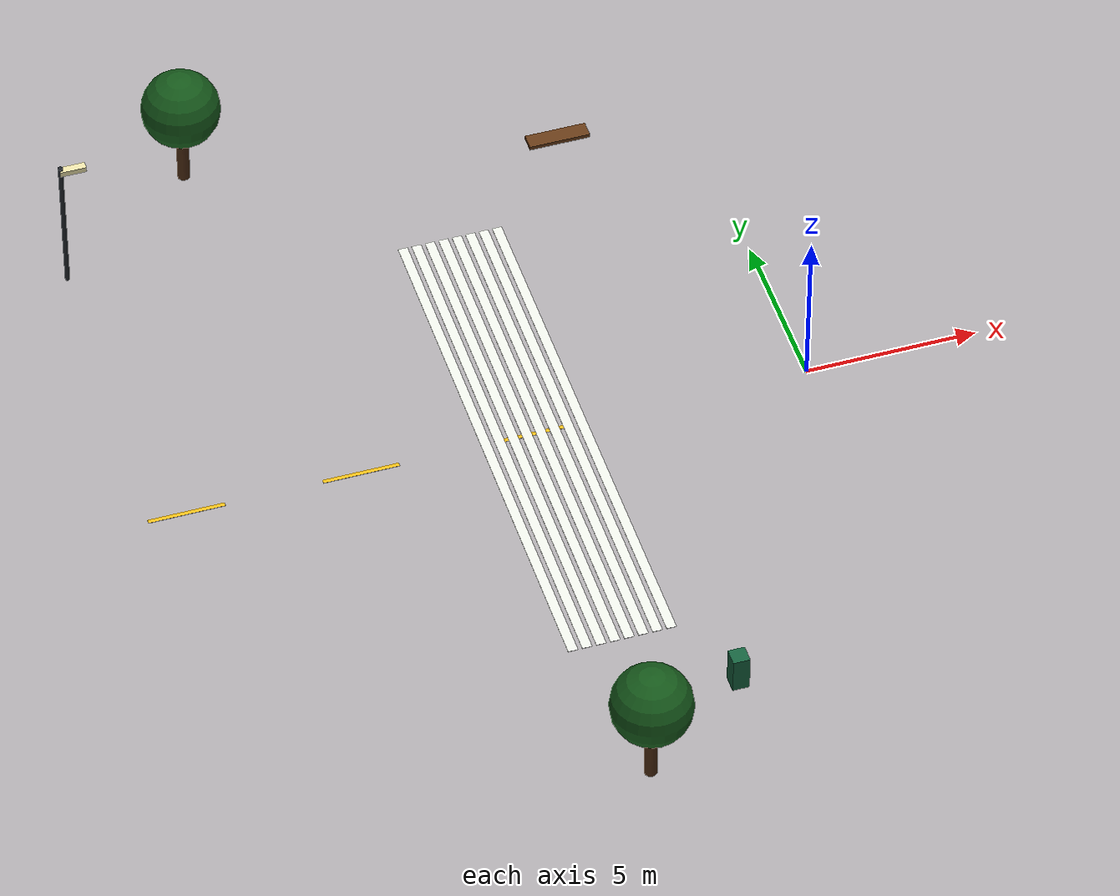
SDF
<sdf version="1.9">
 <world name="sanitation_campus_large">
  <model name="center_dash_16">
   <static>true</static>
   <pose>-18.0 0 0.012 0 0 0</pose>
   <link name="link">
    <visual name="visual">
     <geometry><box><size>2.2 0.12 0.012</size></box></geometry>
     <material>
      <ambient>0.95 0.74 0.10 1</ambient>
      <diffuse>0.95 0.74 0.10 1</diffuse>
      <specular>0.04 0.04 0.04 1</specular>
     </material>
    </visual>
   </link>
  </model>
  <model name="center_dash_17">
   <static>true</static>
   <pose>-13.0 0 0.012 0 0 0</pose>
   <link name="link">
    <visual name="visual">
     <geometry><box><size>2.2 0.12 0.012</size></box></geometry>
     <material>
      <ambient>0.95 0.74 0.10 1</ambient>
      <diffuse>0.95 0.74 0.10 1</diffuse>
      <specular>0.04 0.04 0.04 1</specular>
     </material>
    </visual>
   </link>
  </model>
  <model name="center_dash_18">
   <static>true</static>
   <pose>-8.0 0 0.012 0 0 0</pose>
   <link name="link">
    <visual name="visual">
     <geometry><box><size>2.2 0.12 0.012</size></box></geometry>
     <material>
      <ambient>0.95 0.74 0.10 1</ambient>
      <diffuse>0.95 0.74 0.10 1</diffuse>
      <specular>0.04 0.04 0.04 1</specular>
     </material>
    </visual>
   </link>
  </model>
  <model name="crosswalk_00">
   <static>true</static>
   <pose>-9.4 0 0.014 0 0 0</pose>
   <link name="link">
    <visual name="visual">
     <geometry><box><size>0.28 16.0 0.014</size></box></geometry>
     <material>
      <ambient>0.92 0.93 0.90 1</ambient>
      <diffuse>0.92 0.93 0.90 1</diffuse>
      <specular>0.04 0.04 0.04 1</specular>
     </material>
    </visual>
   </link>
  </model>
  <model name="crosswalk_01">
   <static>true</static>
   <pose>-9.0 0 0.014 0 0 0</pose>
   <link name="link">
    <visual name="visual">
     <geometry><box><size>0.28 16.0 0.014</size></box></geometry>
     <material>
      <ambient>0.92 0.93 0.90 1</ambient>
      <diffuse>0.92 0.93 0.90 1</diffuse>
      <specular>0.04 0.04 0.04 1</specular>
     </material>
    </visual>
   </link>
  </model>
  <model name="crosswalk_02">
   <static>true</static>
   <pose>-8.6 0 0.014 0 0 0</pose>
   <link name="link">
    <visual name="visual">
     <geometry><box><size>0.28 16.0 0.014</size></box></geometry>
     <material>
      <ambient>0.92 0.93 0.90 1</ambient>
      <diffuse>0.92 0.93 0.90 1</diffuse>
      <specular>0.04 0.04 0.04 1</specular>
     </material>
    </visual>
   </link>
  </model>
  <model name="crosswalk_03">
   <static>true</static>
   <pose>-8.2 0 0.014 0 0 0</pose>
   <link name="link">
    <visual name="visual">
     <geometry><box><size>0.28 16.0 0.014</size></box></geometry>
     <material>
      <ambient>0.92 0.93 0.90 1</ambient>
      <diffuse>0.92 0.93 0.90 1</diffuse>
      <specular>0.04 0.04 0.04 1</specular>
     </material>
    </visual>
   </link>
  </model>
  <model name="crosswalk_04">
   <static>true</static>
   <pose>-7.8 0 0.014 0 0 0</pose>
   <link name="link">
    <visual name="visual">
     <geometry><box><size>0.28 16.0 0.014</size></box></geometry>
     <material>
      <ambient>0.92 0.93 0.90 1</ambient>
      <diffuse>0.92 0.93 0.90 1</diffuse>
      <specular>0.04 0.04 0.04 1</specular>
     </material>
    </visual>
   </link>
  </model>
  <model name="crosswalk_05">
   <static>true</static>
   <pose>-7.4 0 0.014 0 0 0</pose>
   <link name="link">
    <visual name="visual">
     <geometry><box><size>0.28 16.0 0.014</size></box></geometry>
     <material>
      <ambient>0.92 0.93 0.90 1</ambient>
      <diffuse>0.92 0.93 0.90 1</diffuse>
      <specular>0.04 0.04 0.04 1</specular>
     </material>
    </visual>
   </link>
  </model>
  <model name="crosswalk_06">
   <static>true</static>
   <pose>-7.0 0 0.014 0 0 0</pose>
   <link name="link">
    <visual name="visual">
     <geometry><box><size>0.28 16.0 0.014</size></box></geometry>
     <material>
      <ambient>0.92 0.93 0.90 1</ambient>
      <diffuse>0.92 0.93 0.90 1</diffuse>
      <specular>0.04 0.04 0.04 1</specular>
     </material>
    </visual>
   </link>
  </model>
  <model name="crosswalk_07">
   <static>true</static>
   <pose>-6.6 0 0.014 0 0 0</pose>
   <link name="link">
    <visual name="visual">
     <geometry><box><size>0.28 16.0 0.014</size></box></geometry>
     <material>
      <ambient>0.92 0.93 0.90 1</ambient>
      <diffuse>0.92 0.93 0.90 1</diffuse>
      <specular>0.04 0.04 0.04 1</specular>
     </material>
    </visual>
   </link>
  </model>
  <model name="tree_14">
   <static>true</static>
   <pose>-14.545454545454547 12.7 0 0 0 0</pose>
   <link name="link">
    <collision name="trunk_collision">
     <geometry><cylinder><radius>0.18</radius><length>2.2</length></cylinder></geometry>
     <pose>0 0 1.1 0 0 0</pose>
    </collision>
    <visual name="trunk">
     <pose>0 0 1.1 0 0 0</pose>
     <geometry><cylinder><radius>0.18</radius><length>2.2</length></cylinder></geometry>
     <material>
      <ambient>0.30 0.17 0.07 1</ambient>
      <diffuse>0.30 0.17 0.07 1</diffuse>
      <specular>0.04 0.04 0.04 1</specular>
     </material>
    </visual>
    <visual name="crown">
     <pose>0 0 2.7 0 0 0</pose>
     <geometry><sphere><radius>1.15</radius></sphere></geometry>
     <material>
      <ambient>0.08 0.34 0.10 1</ambient>
      <diffuse>0.08 0.34 0.10 1</diffuse>
      <specular>0.04 0.04 0.04 1</specular>
     </material>
    </visual>
   </link>
  </model>
  <model name="tree_15">
   <static>true</static>
   <pose>-8.727272727272734 -12.7 0 0 0 0</pose>
   <link name="link">
    <collision name="trunk_collision">
     <geometry><cylinder><radius>0.18</radius><length>2.2</length></cylinder></geometry>
     <pose>0 0 1.1 0 0 0</pose>
    </collision>
    <visual name="trunk">
     <pose>0 0 1.1 0 0 0</pose>
     <geometry><cylinder><radius>0.18</radius><length>2.2</length></cylinder></geometry>
     <material>
      <ambient>0.30 0.17 0.07 1</ambient>
      <diffuse>0.30 0.17 0.07 1</diffuse>
      <specular>0.04 0.04 0.04 1</specular>
     </material>
    </visual>
    <visual name="crown">
     <pose>0 0 2.7 0 0 0</pose>
     <geometry><sphere><radius>1.15</radius></sphere></geometry>
     <material>
      <ambient>0.08 0.34 0.10 1</ambient>
      <diffuse>0.08 0.34 0.10 1</diffuse>
      <specular>0.04 0.04 0.04 1</specular>
     </material>
    </visual>
   </link>
  </model>
  <model name="lamp_post_04">
   <static>true</static>
   <pose>-18.799999999999997 9.7 2.2 0 0 0</pose>
   <link name="link">
    <collision name="collision">
     <geometry><cylinder><radius>0.07</radius><length>4.4</length></cylinder></geometry>
    </collision>
    <visual name="visual">
     <geometry><cylinder><radius>0.07</radius><length>4.4</length></cylinder></geometry>
     <material>
      <ambient>0.12 0.14 0.16 1</ambient>
      <diffuse>0.12 0.14 0.16 1</diffuse>
      <specular>0.04 0.04 0.04 1</specular>
     </material>
    </visual>
   </link>
  </model>
  <model name="lamp_head_04">
   <static>true</static>
   <pose>-18.449999999999996 9.7 4.25 0 0 0</pose>
   <link name="link">
    <visual name="visual">
     <geometry><box><size>0.75 0.22 0.16</size></box></geometry>
     <material>
      <ambient>0.92 0.88 0.66 1</ambient>
      <diffuse>0.92 0.88 0.66 1</diffuse>
      <specular>0.04 0.04 0.04 1</specular>
     </material>
    </visual>
   </link>
  </model>
  <model name="bench_seat_0">
   <static>true</static>
   <pose>-4.0 10.5 0.55 0 0 0</pose>
   <link name="link">
    <collision name="collision"><geometry><box><size>1.8 0.48 0.12</size></box></geometry></collision>
    <visual name="visual">
     <geometry><box><size>1.8 0.48 0.12</size></box></geometry>
     <material>
      <ambient>0.40 0.23 0.09 1</ambient>
      <diffuse>0.40 0.23 0.09 1</diffuse>
      <specular>0.04 0.04 0.04 1</specular>
     </material>
    </visual>
   </link>
  </model>
  <model name="waste_bin_0">
   <static>true</static>
   <pose>-5.5 -10.4 0.55 0 0 0</pose>
   <link name="link">
    <collision name="collision"><geometry><box><size>0.48 0.48 1.1</size></box></geometry></collision>
    <visual name="visual">
     <geometry><box><size>0.48 0.48 1.1</size></box></geometry>
     <material>
      <ambient>0.08 0.38 0.24 1</ambient>
      <diffuse>0.08 0.38 0.24 1</diffuse>
      <specular>0.04 0.04 0.04 1</specular>
     </material>
    </visual>
   </link>
  </model>
 </world>
</sdf>
